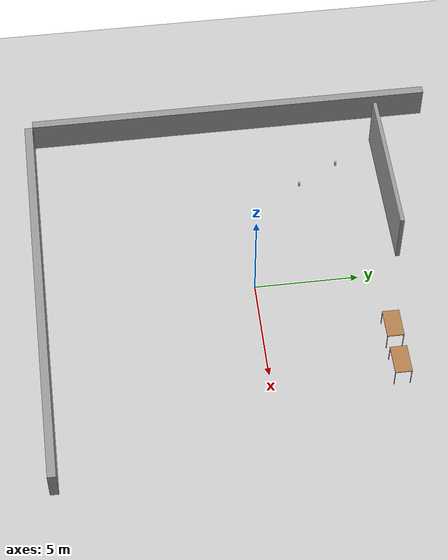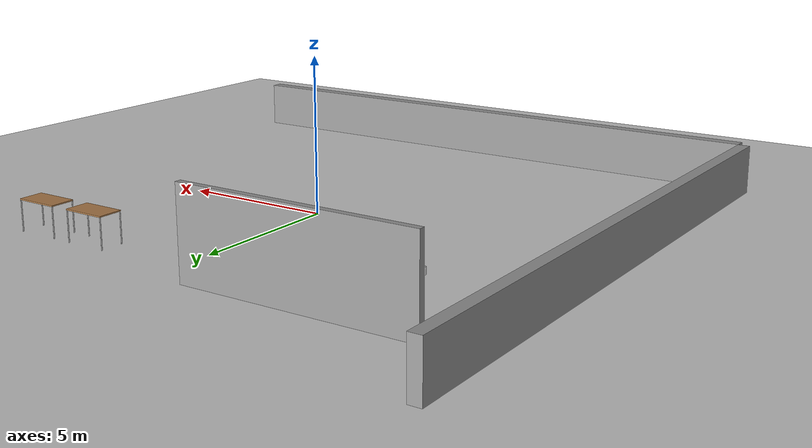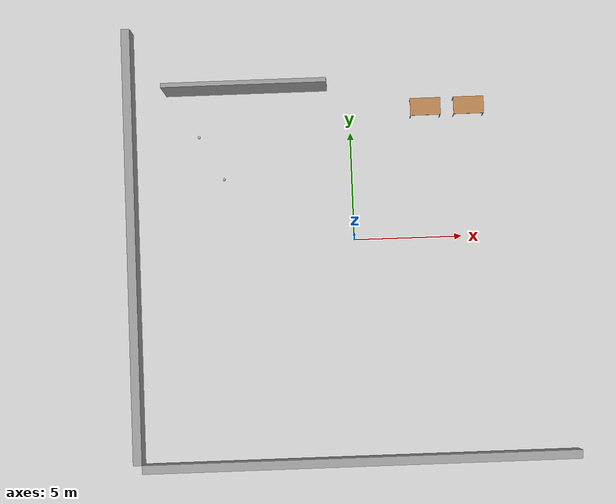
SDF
<sdf version="1.6">
 <world name="default">
  <model name="ground_plane">
   <static>1</static>
   <link name="link">
    <collision name="collision">
     <geometry><plane><normal>0 0 1</normal><size>100 100</size></plane></geometry>
     <surface><friction><ode><mu>100</mu><mu2>50</mu2></ode></friction></surface>
    </collision>
    <visual name="visual">
     <cast_shadows>0</cast_shadows>
     <geometry><plane><normal>0 0 1</normal><size>100 100</size></plane></geometry>
     <material>
      <script><uri>file://media/materials/scripts/gazebo.material</uri><name>Gazebo/Grey</name></script>
     </material>
    </visual>
   </link>
  </model>
  <model name="grey_wall_20_0">
   <link name="south_wall">
    <inertial>
     <mass>10</mass>
     <inertia><ixx>1</ixx><ixy>0</ixy><ixz>0</ixz><iyy>1</iyy><iyz>0</iyz><izz>1</izz></inertia>
    </inertial>
    <visual name="visual">
     <cast_shadows>0</cast_shadows>
     <geometry><box><size>20 0.4 1.6</size></box></geometry>
     <material>
      <script>
       <uri>model://grey_wall/materials/scripts</uri>
       <uri>model://grey_wall/materials/textures</uri>
       <name>vrc/grey_wall</name>
      </script>
      <ambient>1 1 1 1</ambient>
      <diffuse>1 1 1 1</diffuse>
      <specular>0 0 0 1</specular>
      <emissive>0 0 0 1</emissive>
      <shader type="vertex"><normal_map>__default__</normal_map></shader>
     </material>
    </visual>
    <collision name="collision">
     <geometry><box><size>20 0.4 1.6</size></box></geometry>
     <surface>
      <friction>
       <ode><mu>1</mu><mu2>1</mu2><fdir1>0 0 0</fdir1><slip1>0</slip1><slip2>0</slip2></ode>
       <torsional>
        <coefficient>1</coefficient>
        <patch_radius>0</patch_radius>
        <surface_radius>0</surface_radius>
        <use_patch_radius>1</use_patch_radius>
        <ode><slip>0</slip></ode>
       </torsional>
      </friction>
      <bounce><restitution_coefficient>0</restitution_coefficient><threshold>1e+06</threshold></bounce>
      <contact>
       <collide_without_contact>0</collide_without_contact>
       <collide_without_contact_bitmask>1</collide_without_contact_bitmask>
       <collide_bitmask>1</collide_bitmask>
       <ode>
        <soft_cfm>0</soft_cfm>
        <soft_erp>0.2</soft_erp>
        <kp>1e+13</kp>
        <kd>1</kd>
        <max_vel>0.01</max_vel>
        <min_depth>0</min_depth>
       </ode>
       <bullet>
        <split_impulse>1</split_impulse>
        <split_impulse_penetration_threshold>-0.01</split_impulse_penetration_threshold>
        <soft_cfm>0</soft_cfm>
        <soft_erp>0.2</soft_erp>
        <kp>1e+13</kp>
        <kd>1</kd>
       </bullet>
      </contact>
     </surface>
    </collision>
   </link>
   <static>1</static>
   <pose>0 -10.2 0.8 0 -0 0</pose>
  </model>
  <model name="grey_wall_20_2">
   <link name="west_wall">
    <inertial>
     <mass>10</mass>
     <inertia><ixx>1</ixx><ixy>0</ixy><ixz>0</ixz><iyy>1</iyy><iyz>0</iyz><izz>1</izz></inertia>
    </inertial>
    <visual name="visual">
     <cast_shadows>0</cast_shadows>
     <geometry><box><size>20 0.4 1.6</size></box></geometry>
     <material>
      <script>
       <uri>model://grey_wall/materials/scripts</uri>
       <uri>model://grey_wall/materials/textures</uri>
       <name>vrc/grey_wall</name>
      </script>
      <ambient>1 1 1 1</ambient>
      <diffuse>1 1 1 1</diffuse>
      <specular>0 0 0 1</specular>
      <emissive>0 0 0 1</emissive>
      <shader type="vertex"><normal_map>__default__</normal_map></shader>
     </material>
    </visual>
    <collision name="collision">
     <geometry><box><size>20 0.4 1.6</size></box></geometry>
     <surface>
      <friction>
       <ode><mu>1</mu><mu2>1</mu2><fdir1>0 0 0</fdir1><slip1>0</slip1><slip2>0</slip2></ode>
       <torsional>
        <coefficient>1</coefficient>
        <patch_radius>0</patch_radius>
        <surface_radius>0</surface_radius>
        <use_patch_radius>1</use_patch_radius>
        <ode><slip>0</slip></ode>
       </torsional>
      </friction>
      <bounce><restitution_coefficient>0</restitution_coefficient><threshold>1e+06</threshold></bounce>
      <contact>
       <collide_without_contact>0</collide_without_contact>
       <collide_without_contact_bitmask>1</collide_without_contact_bitmask>
       <collide_bitmask>1</collide_bitmask>
       <ode>
        <soft_cfm>0</soft_cfm>
        <soft_erp>0.2</soft_erp>
        <kp>1e+13</kp>
        <kd>1</kd>
        <max_vel>0.01</max_vel>
        <min_depth>0</min_depth>
       </ode>
       <bullet>
        <split_impulse>1</split_impulse>
        <split_impulse_penetration_threshold>-0.01</split_impulse_penetration_threshold>
        <soft_cfm>0</soft_cfm>
        <soft_erp>0.2</soft_erp>
        <kp>1e+13</kp>
        <kd>1</kd>
       </bullet>
      </contact>
     </surface>
    </collision>
   </link>
   <static>1</static>
   <pose>-10.2 0 0.8 0 -0 1.5708</pose>
  </model>
  <model name="table">
   <static>0</static>
   <link name="link">
    <collision name="surface">
     <pose>0 0 1 0 -0 0</pose>
     <geometry><box><size>1.5 0.8 0.03</size></box></geometry>
     <surface><friction><ode><mu>0.6</mu><mu2>0.6</mu2></ode></friction></surface>
    </collision>
    <visual name="visual1">
     <pose>0 0 1 0 -0 0</pose>
     <geometry><box><size>1.4 0.8 0.04</size></box></geometry>
     <material>
      <script><uri>file://media/materials/scripts/gazebo.material</uri><name>Gazebo/Wood</name></script>
     </material>
    </visual>
    <collision name="front_left_leg">
     <pose>0.68 0.38 0.5 0 -0 0</pose>
     <geometry><cylinder><radius>0.02</radius><length>1</length></cylinder></geometry>
    </collision>
    <visual name="front_left_leg">
     <pose>0.68 0.38 0.5 0 -0 0</pose>
     <geometry><cylinder><radius>0.02</radius><length>1</length></cylinder></geometry>
     <material>
      <script><uri>file://media/materials/scripts/gazebo.material</uri><name>Gazebo/Grey</name></script>
     </material>
    </visual>
    <collision name="front_right_leg">
     <pose>0.68 -0.38 0.5 0 -0 0</pose>
     <geometry><cylinder><radius>0.02</radius><length>1</length></cylinder></geometry>
    </collision>
    <visual name="front_right_leg">
     <pose>0.68 -0.38 0.5 0 -0 0</pose>
     <geometry><cylinder><radius>0.02</radius><length>1</length></cylinder></geometry>
     <material>
      <script><uri>file://media/materials/scripts/gazebo.material</uri><name>Gazebo/Grey</name></script>
     </material>
    </visual>
    <collision name="back_right_leg">
     <pose>-0.68 -0.38 0.5 0 -0 0</pose>
     <geometry><cylinder><radius>0.02</radius><length>1</length></cylinder></geometry>
    </collision>
    <visual name="back_right_leg">
     <pose>-0.68 -0.38 0.5 0 -0 0</pose>
     <geometry><cylinder><radius>0.02</radius><length>1</length></cylinder></geometry>
     <material>
      <script><uri>file://media/materials/scripts/gazebo.material</uri><name>Gazebo/Grey</name></script>
     </material>
    </visual>
    <collision name="back_left_leg">
     <pose>-0.68 0.38 0.5 0 -0 0</pose>
     <geometry><cylinder><radius>0.02</radius><length>1</length></cylinder></geometry>
    </collision>
    <visual name="back_left_leg">
     <pose>-0.68 0.38 0.5 0 -0 0</pose>
     <geometry><cylinder><radius>0.02</radius><length>1</length></cylinder></geometry>
     <material>
      <script><uri>file://media/materials/scripts/gazebo.material</uri><name>Gazebo/Grey</name></script>
     </material>
    </visual>
    <inertial>
     <inertia><ixx>1</ixx><ixy>0</ixy><ixz>0</ixz><iyy>1</iyy><iyz>0</iyz><izz>1</izz></inertia>
     <mass>1</mass>
    </inertial>
   </link>
   <pose>3.5 6 0.01 0 -0 0</pose>
  </model>
  <model name="table_0">
   <static>0</static>
   <link name="link">
    <collision name="surface">
     <pose>0 0 1 0 -0 0</pose>
     <geometry><box><size>1.5 0.8 0.03</size></box></geometry>
     <surface><friction><ode><mu>0.6</mu><mu2>0.6</mu2></ode></friction></surface>
    </collision>
    <visual name="visual1">
     <pose>0 0 1 0 -0 0</pose>
     <geometry><box><size>1.4 0.8 0.04</size></box></geometry>
     <material>
      <script><uri>file://media/materials/scripts/gazebo.material</uri><name>Gazebo/Wood</name></script>
     </material>
    </visual>
    <collision name="front_left_leg">
     <pose>0.68 0.38 0.5 0 -0 0</pose>
     <geometry><cylinder><radius>0.02</radius><length>1</length></cylinder></geometry>
    </collision>
    <visual name="front_left_leg">
     <pose>0.68 0.38 0.5 0 -0 0</pose>
     <geometry><cylinder><radius>0.02</radius><length>1</length></cylinder></geometry>
     <material>
      <script><uri>file://media/materials/scripts/gazebo.material</uri><name>Gazebo/Grey</name></script>
     </material>
    </visual>
    <collision name="front_right_leg">
     <pose>0.68 -0.38 0.5 0 -0 0</pose>
     <geometry><cylinder><radius>0.02</radius><length>1</length></cylinder></geometry>
    </collision>
    <visual name="front_right_leg">
     <pose>0.68 -0.38 0.5 0 -0 0</pose>
     <geometry><cylinder><radius>0.02</radius><length>1</length></cylinder></geometry>
     <material>
      <script><uri>file://media/materials/scripts/gazebo.material</uri><name>Gazebo/Grey</name></script>
     </material>
    </visual>
    <collision name="back_right_leg">
     <pose>-0.68 -0.38 0.5 0 -0 0</pose>
     <geometry><cylinder><radius>0.02</radius><length>1</length></cylinder></geometry>
    </collision>
    <visual name="back_right_leg">
     <pose>-0.68 -0.38 0.5 0 -0 0</pose>
     <geometry><cylinder><radius>0.02</radius><length>1</length></cylinder></geometry>
     <material>
      <script><uri>file://media/materials/scripts/gazebo.material</uri><name>Gazebo/Grey</name></script>
     </material>
    </visual>
    <collision name="back_left_leg">
     <pose>-0.68 0.38 0.5 0 -0 0</pose>
     <geometry><cylinder><radius>0.02</radius><length>1</length></cylinder></geometry>
    </collision>
    <visual name="back_left_leg">
     <pose>-0.68 0.38 0.5 0 -0 0</pose>
     <geometry><cylinder><radius>0.02</radius><length>1</length></cylinder></geometry>
     <material>
      <script><uri>file://media/materials/scripts/gazebo.material</uri><name>Gazebo/Grey</name></script>
     </material>
    </visual>
    <inertial>
     <inertia><ixx>1</ixx><ixy>0</ixy><ixz>0</ixz><iyy>1</iyy><iyz>0</iyz><izz>1</izz></inertia>
     <mass>1</mass>
    </inertial>
   </link>
   <pose>5.5 6 0.01 0 -0 0</pose>
  </model>
  <model name="red_ball">
   <link name="link">
    <inertial>
     <mass>0.08</mass>
     <inertia><ixx>0.08</ixx><ixy>0</ixy><ixz>0</ixz><iyy>0.08</iyy><iyz>0</iyz><izz>0.08</izz></inertia>
    </inertial>
    <visual name="visual">
     <geometry><sphere><radius>0.08</radius></sphere></geometry>
     <material>
      <script><name>Gazebo/Grey</name><uri>file://media/materials/scripts/gazebo.material</uri></script>
      <ambient>1 0 0 1</ambient>
      <diffuse>1 0 0 1</diffuse>
      <specular>0.01 0.01 0.01 1</specular>
      <emissive>0 0 0 1</emissive>
      <shader type="vertex"><normal_map>__default__</normal_map></shader>
     </material>
    </visual>
    <collision name="collision">
     <geometry><sphere><radius>0.08</radius></sphere></geometry>
     <surface>
      <friction>
       <ode><mu>1</mu><mu2>1</mu2><fdir1>0 0 0</fdir1><slip1>0</slip1><slip2>0</slip2></ode>
       <torsional>
        <coefficient>1</coefficient>
        <patch_radius>0</patch_radius>
        <surface_radius>0</surface_radius>
        <use_patch_radius>1</use_patch_radius>
        <ode><slip>0</slip></ode>
       </torsional>
      </friction>
      <bounce><restitution_coefficient>1</restitution_coefficient><threshold>0</threshold></bounce>
      <contact>
       <collide_without_contact>0</collide_without_contact>
       <collide_without_contact_bitmask>1</collide_without_contact_bitmask>
       <collide_bitmask>1</collide_bitmask>
       <ode>
        <soft_cfm>0</soft_cfm>
        <soft_erp>0.2</soft_erp>
        <kp>1e+13</kp>
        <kd>1</kd>
        <max_vel>10</max_vel>
        <min_depth>0</min_depth>
       </ode>
       <bullet>
        <split_impulse>1</split_impulse>
        <split_impulse_penetration_threshold>-0.01</split_impulse_penetration_threshold>
        <soft_cfm>0</soft_cfm>
        <soft_erp>0.2</soft_erp>
        <kp>1e+13</kp>
        <kd>1</kd>
       </bullet>
      </contact>
     </surface>
    </collision>
   </link>
   <static>0</static>
   <pose>4.87 0 0.085 0 -0 0</pose>
  </model>
  <model name="grey_wall">
   <static>1</static>
   <link name="link">
    <pose>0 0 1.4 0 -0 0</pose>
    <collision name="collision"><geometry><box><size>7.5 0.2 2.8</size></box></geometry></collision>
    <visual name="visual">
     <cast_shadows>0</cast_shadows>
     <geometry><box><size>7.5 0.2 2.8</size></box></geometry>
     <material>
      <script>
       <uri>model://grey_wall/materials/scripts</uri>
       <uri>model://grey_wall/materials/textures</uri>
       <name>vrc/grey_wall</name>
      </script>
     </material>
    </visual>
   </link>
   <pose>-4.77667 7.13588 0 0 -0 0</pose>
  </model>
  <model name="beer">
   <link name="link">
    <pose>0 0 0.115 0 -0 0</pose>
    <inertial>
     <mass>0.39</mass>
     <inertia><ixx>0.00058</ixx><ixy>0</ixy><ixz>0</ixz><iyy>0.00058</iyy><iyz>0</iyz><izz>0.00019</izz></inertia>
    </inertial>
    <collision name="collision">
     <geometry><cylinder><radius>0.055</radius><length>0.23</length></cylinder></geometry>
    </collision>
    <visual name="visual">
     <geometry><cylinder><radius>0.055</radius><length>0.23</length></cylinder></geometry>
     <material>
      <script>
       <uri>model://beer/materials/scripts</uri>
       <uri>model://beer/materials/textures</uri>
       <name>Beer/Diffuse</name>
      </script>
     </material>
    </visual>
   </link>
   <pose>-7.06382 5.04323 0.010001 0 -0.000109 0</pose>
  </model>
  <model name="beer_0">
   <link name="link">
    <pose>0 0 0.115 0 -0 0</pose>
    <inertial>
     <mass>0.39</mass>
     <inertia><ixx>0.00058</ixx><ixy>0</ixy><ixz>0</ixz><iyy>0.00058</iyy><iyz>0</iyz><izz>0.00019</izz></inertia>
    </inertial>
    <collision name="collision">
     <geometry><cylinder><radius>0.055</radius><length>0.23</length></cylinder></geometry>
    </collision>
    <visual name="visual">
     <geometry><cylinder><radius>0.055</radius><length>0.23</length></cylinder></geometry>
     <material>
      <script>
       <uri>model://beer/materials/scripts</uri>
       <uri>model://beer/materials/textures</uri>
       <name>Beer/Diffuse</name>
      </script>
     </material>
    </visual>
   </link>
   <pose>-5.95207 3.03192 0.010001 0 -0.000109 0</pose>
  </model>
 </world>
</sdf>
